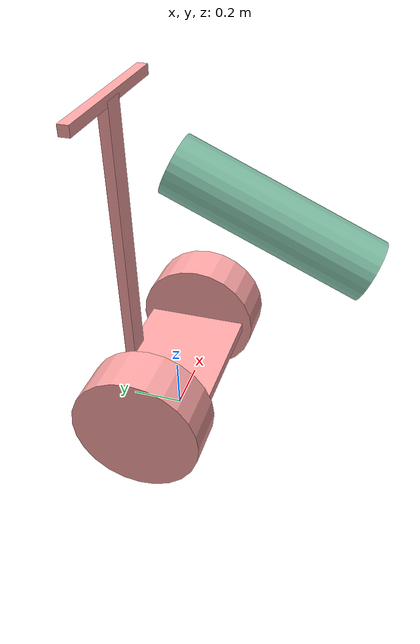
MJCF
<!-- 双轮差速高尔夫球车模型 -->
<!-- 尺寸：轮径48cm，轮宽18cm，轴长70cm，车把104cm，球包120cm -->
<!-- 质量：底盘37.8kg，车把5kg，球包10kg，车轮4.5kg×2，总重61.8kg -->
<mujoco model="balance">

    <compiler angle="radian"/>
    <size njmax="500" nconmax="100"/>
    <option gravity="0 0 -9.81" viscosity="0.002"/>

    <!-- 材质 -->
    <asset>
        <texture type="2d" name="wheel_texture" builtin="checker" mark="edge"
                 rgb1="1 1 1" rgb2="1 0.3 0.3"
                 markrgb="0.3 0.3 0.3" width="1024" height="1024"/>
        <material name="wheel_mat" texture="wheel_texture" texuniform="true" texrepeat="5 5"/>
        <texture type="2d" name="body_texture" builtin="gradient" rgb1="1 1 1"
                 rgb2="1 0.3 0.3" width="512" height="512"/>
        <material name="body_mat" texture="body_texture" texrepeat="4 2" shininess="0.3"/>
        <texture type="2d" name="bag_texture" builtin="gradient" rgb1="1 1 1"
                 rgb2="0 0.5 0.3" width="256" height="256"/>
        <material name="bag_mat" texture="bag_texture" texrepeat="4 2" shininess="0.3"/>
    </asset>

    <worldbody>

        <!-- 整车（轮轴中心离地0.24m） -->
        <body name="segway" pos="0 0 0.24">
            <joint name="segway_free" type="free" damping="0.05"/>

            <!-- 底盘（位于车轮中心高度） -->
            <body name="chassis" pos="0 0 0">
                <inertial pos="0.0 0.079 0.0" quat="0.707107 0 0 0.707107"
                          mass="37.8" diaginertia="0.75 1.35 1.60"/>
                <geom type="box" size="0.35 0.20 0.02" material="body_mat"/>
            </body>

            <!-- 车把：长104cm，底部从轮轴稍上方开始 -->
            <body name="handlebar" pos="0 0 0.02">
                <inertial pos="0.0 0.0 0.0" quat="0.707107 0 0 0.707107"
                          mass="5.0" diaginertia="0.5 0.45 0.05"/>
                <geom type="box" size="0.045 0.02 0.52" pos="0 0.18 0.52" material="body_mat"/>
                <geom type="box" size="0.3 0.02 0.02" pos="0 0.18 1.04" material="body_mat"/>

<!--                  球包：高120cm，位于杆后方偏上-->

<!--                &lt;!&ndash; 增加一个球包挂点，让球包可以在转弯时模拟左右摇晃 &ndash;&gt;-->
<!--                    &lt;!&ndash; 左右摆动 &ndash;&gt;-->
<!--                    &lt;!&ndash; 球包 &ndash;&gt;-->
            </body>

            <body name="golf_bag" pos="0.35 -0.3 0.5" quat="0.40 -0.2588 0 0">
                <inertial pos="0 0 0" mass="10" diaginertia="1.10 1.10 0.10"/>
                <geom type="cylinder" size="0.13 0.44" material="bag_mat"/>
            </body>

            <!-- 左轮：直径48cm，宽18cm，位置x=-0.35 -->
            <body name="l_wheel" pos="-0.35 0 0">
                <inertial pos="0 0 0" quat="0.5 0.5 -0.5 0.5"
                          mass="4.5" diaginertia="0.085 0.043 0.043"/>
                <joint name="torso_l_wheel" type="hinge" pos="0 0 0" axis="-1 0 0" damping="0.02"/>
                <geom type="cylinder" size="0.24 0.09" quat="0.707107 0 0.707107 0"
                      material="wheel_mat" contype="2" conaffinity="1" friction="2 1 0.8"/>
            </body>

            <!-- 右轮：直径48cm，宽18cm，位置x=0.35 -->
            <body name="r_wheel" pos="0.35 0 0">
                <inertial pos="0 0 0" quat="0.5 0.5 -0.5 0.5"
                          mass="4.5" diaginertia="0.085 0.043 0.043"/>
                <joint name="torso_r_wheel" type="hinge" pos="0 0 0" axis="-1 0 0" damping="0.02"/>
                <geom type="cylinder" size="0.24 0.09" quat="0.707107 0 0.707107 0"
                      material="wheel_mat" contype="2" conaffinity="1" friction="2 1 0.8"/>
            </body>
        </body>
    </worldbody>

    <actuator>
        <!-- 电机 -->
        <motor name="motor_l_wheel" joint="torso_l_wheel" gear="1" ctrllimited="true" ctrlrange="-50 50"/>
        <motor name="motor_r_wheel" joint="torso_r_wheel" gear="1" ctrllimited="true" ctrlrange="-50 50"/>
    </actuator>

</mujoco>
